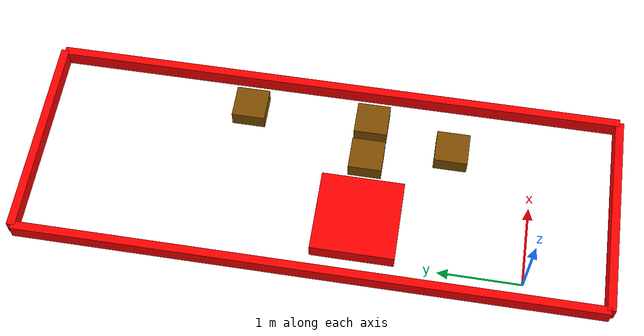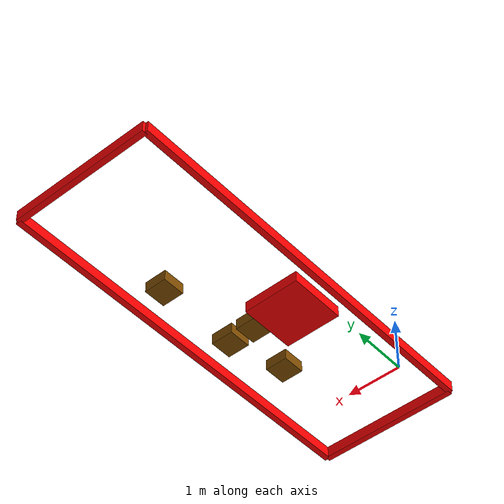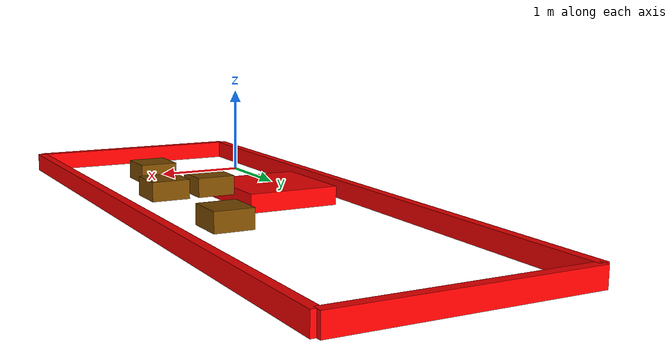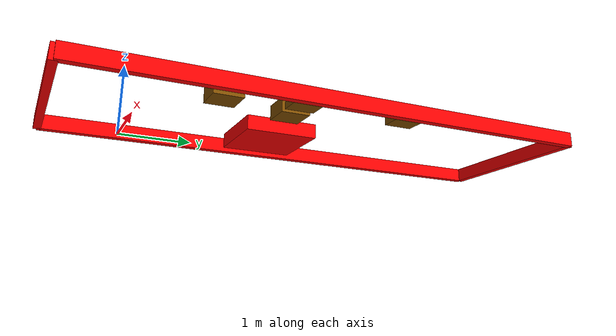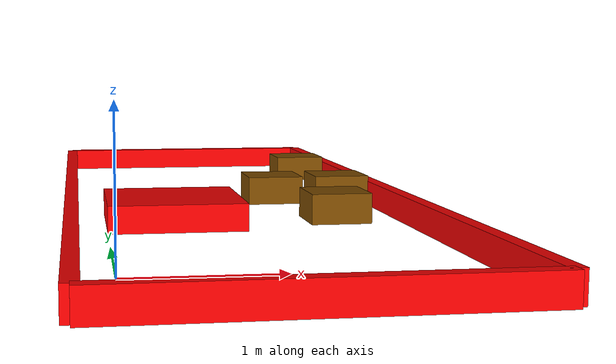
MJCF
<mujoco model="scene">
    <compiler angle="radian"/>
    <worldbody>
        <body name="obstacle_wall_down">
            <geom name="obstacle_wall_down" type="box" pos="1 -1 0.1" euler="0.0 0.0 0.0" size="1.25 0.05 0.1"
                  rgba="1.0 0.0 0.0 1"/>
        </body>
        <body name="obstacle_wall_up">
            <geom name="obstacle_wall_up" type="box" pos="1 6 0.1" euler="0.0 0.0 0.0" size="1.25 0.05 0.1"
                  rgba="1.0 0.0 0.0 1"/>
        </body>
        <body name="obstacle_wall_left">
            <geom name="obstacle_wall_left" type="box" pos="-.25 2.5 0.1" euler="0.0 0.0 0.0" size="0.05 3.5 0.1"
                  rgba="1.0 0.0 0.0 1"/>
        </body>
        <body name="obstacle_wall_right">
            <geom name="obstacle_wall_right" type="box" pos="2.25 2.5 0.1" euler="0.0 0.0 0.0" size="0.05 3.5 0.1"
                  rgba="1.0 0.0 0.0 1"/>
        </body>
        <body name="obstacle_obstacle_0">
            <geom name="obstacle_obstacle_0" type="box" pos="0.5 2.0 0.1" euler="0.0 0.0 0.0" size="0.5 0.5 0.1" rgba="1.0 0.0 0.0 1"/>
        </body>
        <body name="free_cube1" pos="1.75 2.0 0.25">
            <freejoint />
            <geom type="box" size="0.2 0.2 0.1" rgba="0.5 0.3 0 1" mass="1" contype="1" conaffinity="1" />
        </body>
        <body name="free_cube2" pos="1.25 2.0 0.25">
            <freejoint />
            <geom type="box" size="0.2 0.2 0.1" rgba="0.5 0.3 0 1" mass="1" contype="1" conaffinity="1" />
        </body>
        <body name="free_cube3" pos="1.75 3.5 0.25">
            <freejoint />
            <geom type="box" size="0.2 0.2 0.1" rgba="0.5 0.3 0 1" mass="1" contype="1" conaffinity="1" />
        </body>
        <body name="free_cube4" pos="1.5 1.0 0.25">
            <freejoint />
            <geom type="box" size="0.2 0.2 0.1" rgba="0.5 0.3 0 1" mass="1" contype="1" conaffinity="1" />
        </body>
    </worldbody>
</mujoco>
